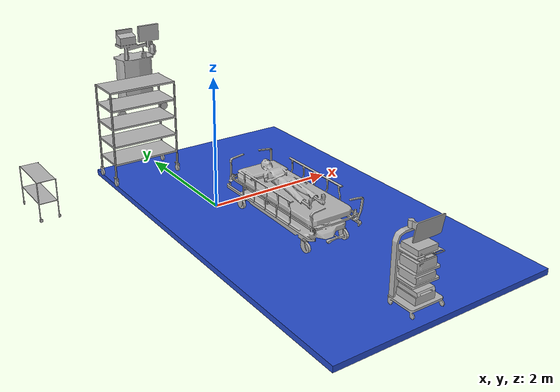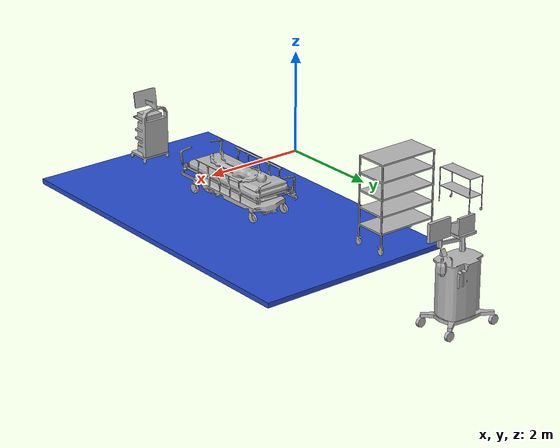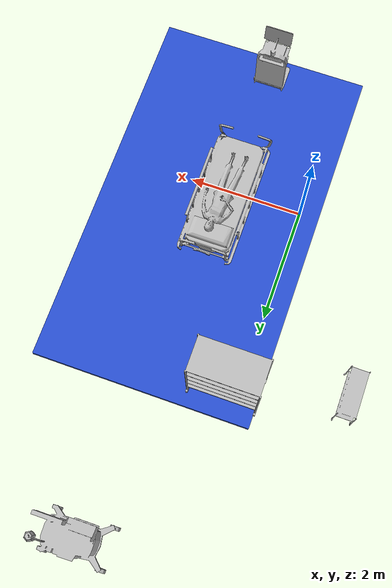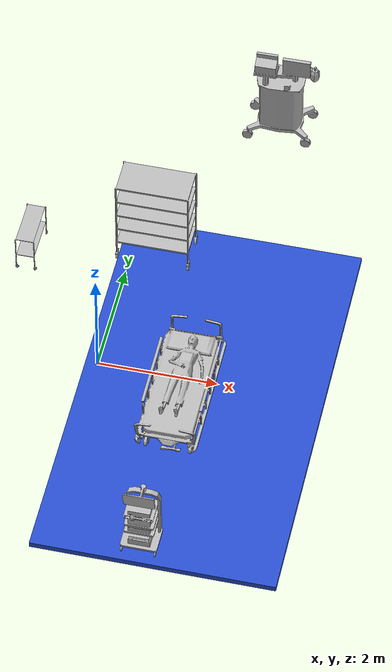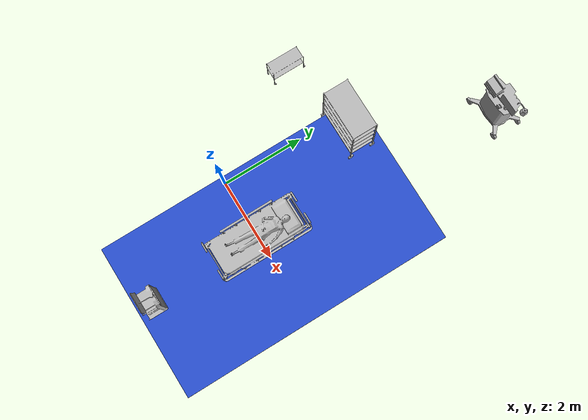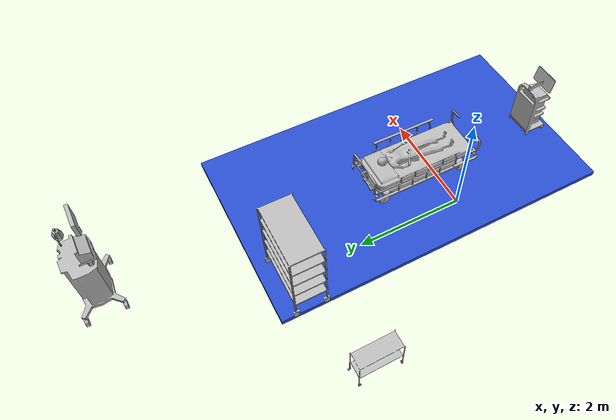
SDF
<sdf version="1.7">
 <world name="world">
  <gravity>0 0 -9.8</gravity>
  <physics name="default_physics" default="0" type="ode">
   <max_step_size>0.001</max_step_size>
   <real_time_factor>1</real_time_factor>
   <real_time_update_rate>1000</real_time_update_rate>
   <ode>
    <solver>
     <type>quick</type>
     <precon>none</precon>
     <iters>50</iters>
     <sor>1.3</sor>
     <use_dynamic_moi_rescaling>0</use_dynamic_moi_rescaling>
     <friction_model>pyramid_model</friction_model>
     <constraints>
      <cfm>0.0</cfm>
      <erp>0.2</erp>
      <contact_max_correcting_vel>100.0</contact_max_correcting_vel>
      <contact_surface_layer>0.001</contact_surface_layer>
     </constraints>
     <solver>
      <type>quick</type>
      <precon>none</precon>
      <iters>50</iters>
      <sor>1.3</sor>
      <use_dynamic_moi_rescaling>0</use_dynamic_moi_rescaling>
      <friction_model>pyramid_model</friction_model>
      <constraints>
       <cfm>0.0</cfm>
       <erp>0.2</erp>
       <contact_max_correcting_vel>100.0</contact_max_correcting_vel>
       <contact_surface_layer>0.001</contact_surface_layer>
      </constraints>
     </solver>
     <solver_type>2</solver_type>
     <min_step_size>0.0001</min_step_size>
     <max_step_size>0.001</max_step_size>
     <step_size>0.001</step_size>
     <damping>1</damping>
     <implicit_spring_damper>0</implicit_spring_damper>
     <preprocess_ccd>0</preprocess_ccd>
     <friction_cfm>0.0</friction_cfm>
     <friction_erp>0.2</friction_erp>
     <sor_eps>0.1</sor_eps>
     <sor_iterations>20</sor_iterations>
     <max_contacts>20</max_contacts>
     <surface_layer_width>0.001</surface_layer_width>
     <contact_max_correcting_vel>100.0</contact_max_correcting_vel>
    </solver>
   </ode>
  </physics>
  <scene><ambient>0.6 0.6 0.6 1</ambient><background>0.4 0.4 0.4 1</background><shadows>0</shadows></scene>
  <light name="sun" type="directional">
   <pose>0 0 10 0 -0 0</pose>
   <diffuse>0.8 0.8 0.8 1</diffuse>
   <specular>0.2 0.2 0.2 1</specular>
   <attenuation>
    <range>1000</range>
    <constant>0.9</constant>
    <linear>0.01</linear>
    <quadratic>0.001</quadratic>
   </attenuation>
   <direction>-0.5 0.1 -0.9</direction>
   <spot><inner_angle>0</inner_angle><outer_angle>0</outer_angle><falloff>0</falloff></spot>
  </light>
  <model name="floor">
   <static>true</static>
   <link name="floor_link">
    <collision name="floor_collision">
     <geometry><plane><normal>0 0 1</normal><size>4 7</size></plane></geometry>
     <pose>1.65 0.25 -0.75 0 0 0</pose>
    </collision>
    <visual name="floor_visual">
     <geometry><box><size>4 7 0.1</size></box></geometry>
     <pose>1.65 0.25 -0.75 0 0 0</pose>
     <material>
      <script><uri>file://media/materials/scripts/gazebo.material</uri><name>Gazebo/Blue</name></script>
     </material>
    </visual>
   </link>
  </model>
  <model name="TrolleyBedPatient_1">
   <frame name="TrolleyBedPatient::__model__" attached_to="TrolleyBedPatient::body">
    <pose relative_to="__model__">1.83202 2.2612 0 0 -0 0</pose>
   </frame>
   <static>1</static>
   <link name="TrolleyBedPatient::body">
    <pose relative_to="TrolleyBedPatient::__model__">-0.45 -2.25 -0.7 0 -0 0</pose>
    <visual name="visual">
     <geometry><mesh><uri>model://TrolleyBedPatient/meshes/TrolleyBedPatient.obj</uri></mesh></geometry>
    </visual>
   </link>
  </model>
  <model name="AnesthesiaMachine_1">
   <frame name="AnesthesiaMachine::__model__" attached_to="AnesthesiaMachine::body">
    <pose relative_to="__model__">1.28478 4.1127 0 0 0 -3.12971</pose>
   </frame>
   <static>1</static>
   <link name="AnesthesiaMachine::body">
    <pose relative_to="AnesthesiaMachine::__model__">-0.45 -2.25 -0.7 0 -0 0</pose>
    <visual name="visual">
     <geometry><mesh><uri>model://AnesthesiaMachine/meshes/AnesthesiaMachine.obj</uri></mesh></geometry>
    </visual>
    <collision name="collision">
     <geometry><mesh><uri>model://AnesthesiaMachine/meshes/AnesthesiaMachine_Col.obj</uri></mesh></geometry>
    </collision>
   </link>
  </model>
  <model name="StorageRack_2">
   <frame name="StorageRack::__model__" attached_to="StorageRack::link">
    <pose relative_to="__model__">0.69866 5.4178 -8e-06 0 4e-06 0</pose>
   </frame>
   <link name="StorageRack::link">
    <pose relative_to="StorageRack::__model__">-0.45 -2.25 -0.7 0 -0 0</pose>
    <visual name="visual">
     <geometry><mesh><uri>model://StorageRack/meshes/StorageRack.obj</uri></mesh></geometry>
    </visual>
   </link>
   <static>1</static>
  </model>
  <model name="SurgicalTrolley_2">
   <frame name="SurgicalTrolley::__model__" attached_to="SurgicalTrolley::body">
    <pose relative_to="__model__">0.45 2.25 0 0 0 -1.5708</pose>
   </frame>
   <static>1</static>
   <link name="SurgicalTrolley::body">
    <pose relative_to="SurgicalTrolley::__model__">-0.45 -2.25 -0.71 0 -0 0</pose>
    <visual name="visual">
     <geometry><mesh><uri>model://SurgicalTrolley/meshes/trolley.obj</uri></mesh></geometry>
    </visual>
    <collision name="collision">
     <geometry><mesh><uri>model://SurgicalTrolley/meshes/trolley.obj</uri></mesh></geometry>
    </collision>
   </link>
  </model>
  <model name="InstrumentCart1_3">
   <frame name="InstrumentCart1::__model__" attached_to="InstrumentCart1::body">
    <pose relative_to="__model__">1.83539 -0.5879 0 0 -0 0</pose>
   </frame>
   <static>1</static>
   <link name="InstrumentCart1::body">
    <pose relative_to="InstrumentCart1::__model__">-0.45 -2.25 -0.7 0 -0 0</pose>
    <visual name="visual">
     <geometry><mesh><uri>model://InstrumentCart1/meshes/InstrumentCart1.obj</uri></mesh></geometry>
    </visual>
    <collision name="collision">
     <geometry><mesh><uri>model://InstrumentCart1/meshes/InstrumentCart1.obj</uri></mesh></geometry>
    </collision>
   </link>
  </model>
  <magnetic_field>6e-06 2.3e-05 -4.2e-05</magnetic_field>
  <atmosphere type="adiabatic"/>
  <spherical_coordinates>
   <surface_model>EARTH_WGS84</surface_model>
   <latitude_deg>0</latitude_deg>
   <longitude_deg>0</longitude_deg>
   <elevation>0</elevation>
   <heading_deg>0</heading_deg>
  </spherical_coordinates>
 </world>
</sdf>
